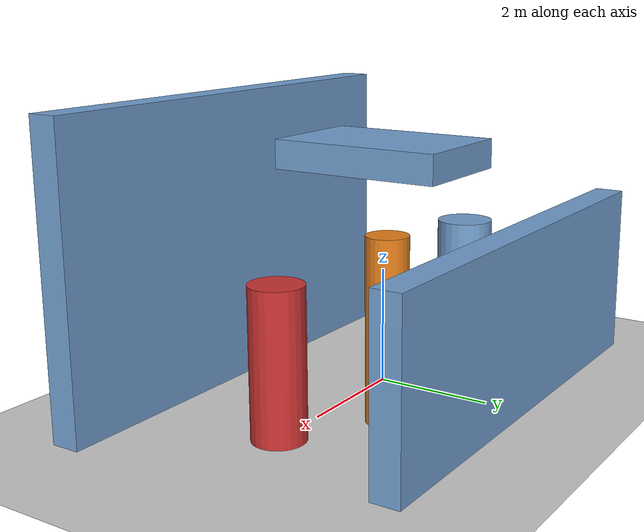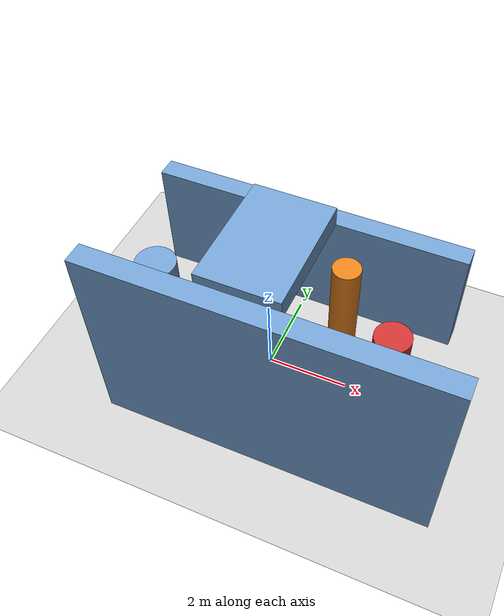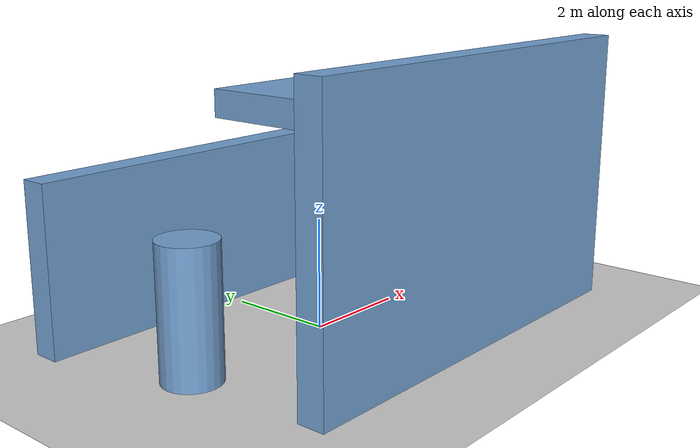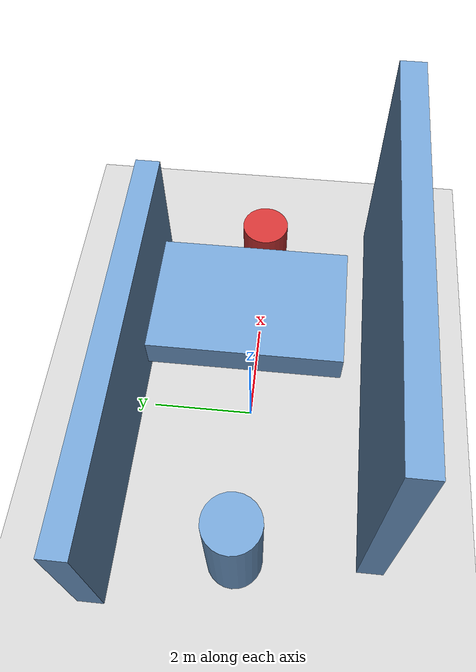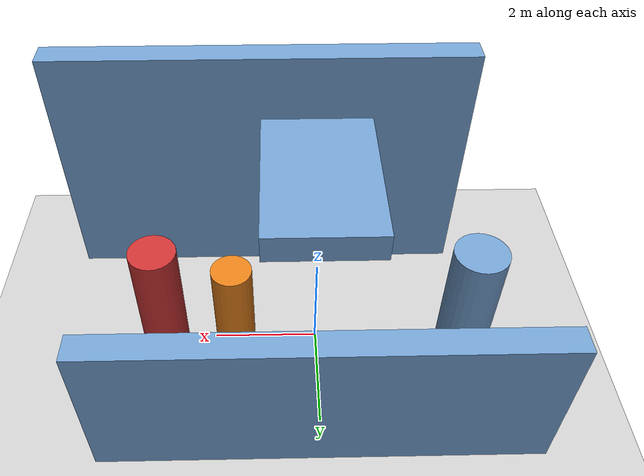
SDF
<?xml version='1.0'?>
<sdf version='1.6'>
  <world name='routeA_rl_v1__support_expansion__rl_val__xy_z_combined_bypass__000166'>
    <!-- Sun light -->
    <light name='sun' type='directional'>
      <cast_shadows>1</cast_shadows>
      <pose>0 0 10 0 0 0</pose>
      <diffuse>0.8 0.8 0.8 1</diffuse>
      <specular>0.2 0.2 0.2 1</specular>
      <attenuation>
        <range>1000</range>
        <constant>0.9</constant>
        <linear>0.01</linear>
        <quadratic>0.001</quadratic>
      </attenuation>
      <direction>-0.5 0.1 -0.9</direction>
    </light>

    <!-- Ground plane -->
    <model name='ground_plane'>
      <static>1</static>
      <link name='link'>
        <collision name='collision'>
          <geometry>
            <plane>
              <normal>0 0 1</normal>
              <size>100 100</size>
            </plane>
          </geometry>
          <surface>
            <contact>
              <collide_bitmask>65535</collide_bitmask>
              <ode/>
            </contact>
            <friction>
              <ode>
                <mu>100</mu>
                <mu2>50</mu2>
              </ode>
              <torsional><ode/></torsional>
            </friction>
            <bounce/>
          </surface>
          <max_contacts>10</max_contacts>
        </collision>
        <visual name='visual'>
          <cast_shadows>0</cast_shadows>
          <geometry>
            <plane>
              <normal>0 0 1</normal>
              <size>100 100</size>
            </plane>
          </geometry>
          <material>
            <script>
              <uri>file://media/materials/scripts/gazebo.material</uri>
              <n>Gazebo/Grey</n>
            </script>
          </material>
        </visual>
      </link>
    </model>

    <!-- Environment -->
    <magnetic_field>6e-06 2.3e-05 -4.2e-05</magnetic_field>
    <atmosphere type='adiabatic'/>
    <physics name='default_physics' default='0' type='ode'>
      <gravity>0 0 -9.8</gravity>
      <max_step_size>0.004</max_step_size>
      <real_time_factor>1</real_time_factor>
      <real_time_update_rate>250</real_time_update_rate>
    </physics>
    <scene>
      <ambient>0.4 0.4 0.4 1</ambient>
      <background>0.7 0.7 0.7 1</background>
      <shadows>1</shadows>
    </scene>
    <wind/>
    <spherical_coordinates>
      <surface_model>EARTH_WGS84</surface_model>
      <latitude_deg>0</latitude_deg>
      <longitude_deg>0</longitude_deg>
      <elevation>0</elevation>
      <heading_deg>0</heading_deg>
    </spherical_coordinates>

    <!-- ============ OBSTACLES (6) ============ -->
    <model name='wall_upper'>
      <static>1</static>
      <link name='link'>
        <visual name='visual'>
          <geometry>
            <box>
              <size>8.0000 0.5000 3.0000</size>
            </box>
          </geometry>
          <material>
            <script>
              <n>Gazebo/Blue</n>
              <uri>file://media/materials/scripts/gazebo.material</uri>
            </script>
            <ambient>0.447 0.624 0.812 1</ambient>
          </material>
        </visual>
        <collision name='collision'>
          <geometry>
            <box>
              <size>8.0000 0.5000 3.0000</size>
            </box>
          </geometry>
          <max_contacts>10</max_contacts>
          <surface>
            <contact><ode/></contact>
            <bounce/>
            <friction>
              <ode><mu>1</mu><mu2>1</mu2></ode>
              <torsional><ode/></torsional>
            </friction>
          </surface>
        </collision>
      </link>
      <pose>0.0000 2.5000 1.5000 0 0 0.0000</pose>
    </model>

    <model name='wall_lower'>
      <static>1</static>
      <link name='link'>
        <visual name='visual'>
          <geometry>
            <box>
              <size>8.0000 0.5000 5.0000</size>
            </box>
          </geometry>
          <material>
            <script>
              <n>Gazebo/Blue</n>
              <uri>file://media/materials/scripts/gazebo.material</uri>
            </script>
            <ambient>0.447 0.624 0.812 1</ambient>
          </material>
        </visual>
        <collision name='collision'>
          <geometry>
            <box>
              <size>8.0000 0.5000 5.0000</size>
            </box>
          </geometry>
          <max_contacts>10</max_contacts>
          <surface>
            <contact><ode/></contact>
            <bounce/>
            <friction>
              <ode><mu>1</mu><mu2>1</mu2></ode>
              <torsional><ode/></torsional>
            </friction>
          </surface>
        </collision>
      </link>
      <pose>1.0000 -2.5000 2.5000 0 0 0.0000</pose>
    </model>

    <model name='overhang'>
      <static>1</static>
      <link name='link'>
        <visual name='visual'>
          <geometry>
            <box>
              <size>2.0000 3.0000 0.5000</size>
            </box>
          </geometry>
          <material>
            <script>
              <n>Gazebo/Blue</n>
              <uri>file://media/materials/scripts/gazebo.material</uri>
            </script>
            <ambient>0.447 0.624 0.812 1</ambient>
          </material>
        </visual>
        <collision name='collision'>
          <geometry>
            <box>
              <size>2.0000 3.0000 0.5000</size>
            </box>
          </geometry>
          <max_contacts>10</max_contacts>
          <surface>
            <contact><ode/></contact>
            <bounce/>
            <friction>
              <ode><mu>1</mu><mu2>1</mu2></ode>
              <torsional><ode/></torsional>
            </friction>
          </surface>
        </collision>
      </link>
      <pose>0.0000 0.0000 4.0000 0 0 0.0000</pose>
    </model>

    <model name='bypass_cyl_0'>
      <static>1</static>
      <link name='link'>
        <visual name='visual'>
          <geometry>
            <cylinder>
              <radius>0.5185</radius>
              <length>2.3206</length>
            </cylinder>
          </geometry>
          <material>
            <script>
              <n>Gazebo/Blue</n>
              <uri>file://media/materials/scripts/gazebo.material</uri>
            </script>
            <ambient>0.447 0.624 0.812 1</ambient>
          </material>
        </visual>
        <collision name='collision'>
          <geometry>
            <cylinder>
              <radius>0.5185</radius>
              <length>2.3206</length>
            </cylinder>
          </geometry>
          <max_contacts>10</max_contacts>
          <surface>
            <contact><ode/></contact>
            <bounce/>
            <friction>
              <ode><mu>1</mu><mu2>1</mu2></ode>
              <torsional><ode/></torsional>
            </friction>
          </surface>
        </collision>
      </link>
      <pose>-3.0000 0.0000 1.1603 0 0 0.0000</pose>
    </model>

    <model name='bypass_cyl_1'>
      <static>1</static>
      <link name='link'>
        <visual name='visual'>
          <geometry>
            <cylinder>
              <radius>0.4436</radius>
              <length>2.4600</length>
            </cylinder>
          </geometry>
          <material>
            <script>
              <n>Gazebo/Red</n>
              <uri>file://media/materials/scripts/gazebo.material</uri>
            </script>
            <ambient>0.8 0.2 0.2 1</ambient>
          </material>
        </visual>
        <collision name='collision'>
          <geometry>
            <cylinder>
              <radius>0.4436</radius>
              <length>2.4600</length>
            </cylinder>
          </geometry>
          <max_contacts>10</max_contacts>
          <surface>
            <contact><ode/></contact>
            <bounce/>
            <friction>
              <ode><mu>1</mu><mu2>1</mu2></ode>
              <torsional><ode/></torsional>
            </friction>
          </surface>
        </collision>
      </link>
      <pose>3.0000 0.0000 1.2300 0 0 0.0000</pose>
    </model>

    <model name='bypass_cyl_2'>
      <static>1</static>
      <link name='link'>
        <visual name='visual'>
          <geometry>
            <cylinder>
              <radius>0.3450</radius>
              <length>3.0292</length>
            </cylinder>
          </geometry>
          <material>
            <script>
              <n>Gazebo/Orange</n>
              <uri>file://media/materials/scripts/gazebo.material</uri>
            </script>
            <ambient>0.9 0.5 0.1 1</ambient>
          </material>
        </visual>
        <collision name='collision'>
          <geometry>
            <cylinder>
              <radius>0.3450</radius>
              <length>3.0292</length>
            </cylinder>
          </geometry>
          <max_contacts>10</max_contacts>
          <surface>
            <contact><ode/></contact>
            <bounce/>
            <friction>
              <ode><mu>1</mu><mu2>1</mu2></ode>
              <torsional><ode/></torsional>
            </friction>
          </surface>
        </collision>
      </link>
      <pose>1.5000 1.0000 1.5146 0 0 0.0000</pose>
    </model>

    <!-- GUI camera -->
    <gui fullscreen='0'>
      <camera name='user_camera'>
        <pose>-15 0 18 0 0.85 0.15</pose>
        <view_controller>orbit</view_controller>
        <projection_type>perspective</projection_type>
      </camera>
    </gui>
  </world>
</sdf>
